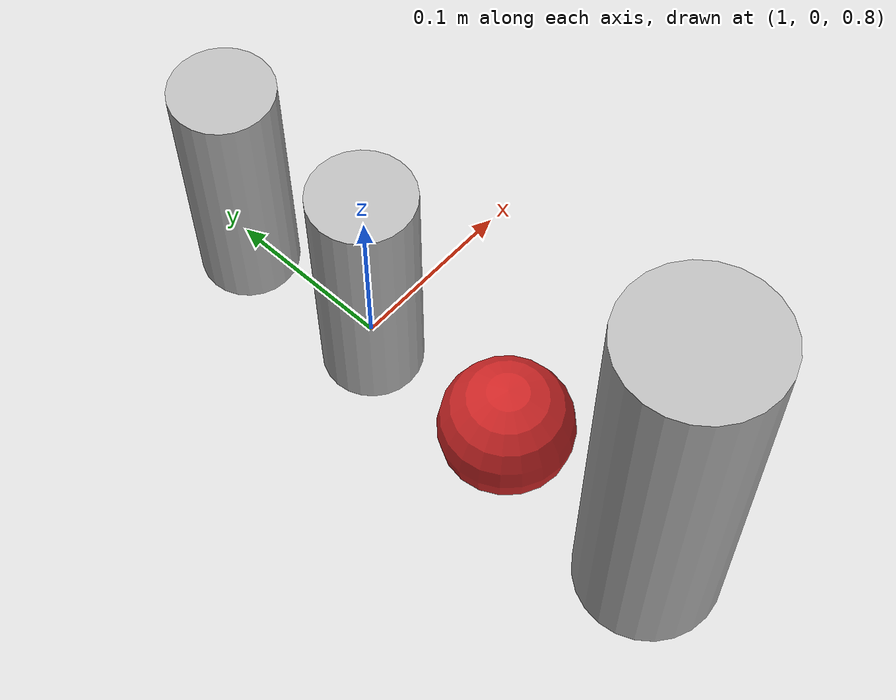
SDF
<sdf version="1.6">
 <world name="default">
  <light name="sun" type="directional">
   <pose>0 0 10 0 -0 0</pose>
   <diffuse>0.8 0.8 0.8 1</diffuse>
   <specular>0.2 0.2 0.2 1</specular>
   <attenuation>
    <range>1000</range>
    <constant>0.9</constant>
    <linear>0.01</linear>
    <quadratic>0.001</quadratic>
   </attenuation>
   <direction>-0.5 0.1 -0.9</direction>
  </light>
  <model name="ground_plane">
   <static>1</static>
   <link name="link">
    <collision name="collision">
     <geometry><plane><normal>0 0 1</normal><size>100 100</size></plane></geometry>
     <surface>
      <contact><collide_bitmask>65535</collide_bitmask></contact>
      <friction><ode><mu>100</mu><mu2>50</mu2></ode></friction>
     </surface>
    </collision>
    <visual name="visual">
     <cast_shadows>0</cast_shadows>
     <geometry><plane><normal>0 0 1</normal><size>100 100</size></plane></geometry>
     <material>
      <script><uri>file://media/materials/scripts/gazebo.material</uri><name>Gazebo/Grey</name></script>
     </material>
    </visual>
   </link>
  </model>
  <gravity>0 0 -9.8</gravity>
  <magnetic_field>6e-06 2.3e-05 -4.2e-05</magnetic_field>
  <atmosphere type="adiabatic"/>
  <physics name="default_physics" default="0" type="ode">
   <max_step_size>0.001</max_step_size>
   <real_time_factor>1</real_time_factor>
   <real_time_update_rate>1000</real_time_update_rate>
  </physics>
  <scene><ambient>0.4 0.4 0.4 1</ambient><background>0.7 0.7 0.7 1</background><shadows>1</shadows></scene>
  <spherical_coordinates>
   <surface_model>EARTH_WGS84</surface_model>
   <latitude_deg>0</latitude_deg>
   <longitude_deg>0</longitude_deg>
   <elevation>0</elevation>
   <heading_deg>0</heading_deg>
  </spherical_coordinates>
  <model name="coke_can_slim">
   <static>0</static>
   <link name="link">
    <inertial>
     <mass>0.15</mass>
     <inertia><ixx>2079.98</ixx><ixy>0</ixy><ixz>0</ixz><iyy>2079.98</iyy><iyz>0</iyz><izz>419.21</izz></inertia>
    </inertial>
    <collision name="collision">
     <geometry><cylinder><radius>0.029</radius><length>0.15</length></cylinder></geometry>
    </collision>
    <visual name="visual">
     <geometry><cylinder><radius>0.029</radius><length>0.15</length></cylinder></geometry>
     <material>
      <script>
       <uri>model://coke_can_slim/material/scripts</uri>
       <uri>model://coke_can_slim/material/textures</uri>
       <name>Custom/coke_can_slim</name>
      </script>
     </material>
    </visual>
    <velocity_decay><linear>0</linear><angular>0</angular></velocity_decay>
   </link>
   <pose>1 6e-06 0.850002 -9.3e-05 5.8e-05 0</pose>
  </model>
  <model name="biscuits_pack">
   <static>0</static>
   <link name="link">
    <inertial>
     <mass>0.25</mass>
     <inertia><ixx>0</ixx><ixy>0</ixy><ixz>0</ixz><iyy>0</iyy><iyz>0</iyz><izz>0</izz></inertia>
    </inertial>
    <collision name="collision">
     <geometry><cylinder><radius>0.029</radius><length>0.15</length></cylinder></geometry>
    </collision>
    <visual name="visual">
     <geometry><cylinder><radius>0.029</radius><length>0.15</length></cylinder></geometry>
     <material>
      <script>
       <uri>model://biscuits_pack/material/scripts</uri>
       <uri>model://biscuits_pack/material/textures</uri>
       <name>Custom/biscuits_pack</name>
      </script>
     </material>
    </visual>
    <velocity_decay><linear>0</linear><angular>0</angular></velocity_decay>
   </link>
   <pose>0.999984 0.100026 0.850014 -0.000493 -2.6e-05 -1e-06</pose>
  </model>
  <model name="pringles2">
   <static>0</static>
   <link name="link">
    <inertial>
     <mass>0.25</mass>
     <inertia><ixx>0</ixx><ixy>0</ixy><ixz>0</ixz><iyy>0</iyy><iyz>0</iyz><izz>0</izz></inertia>
    </inertial>
    <collision name="collision">
     <pose>0 0 0.12 -3.14159 -0 0</pose>
     <geometry><cylinder><radius>0.04</radius><length>0.235</length></cylinder></geometry>
    </collision>
    <visual name="visual">
     <pose>0 0 0.12 -3.14159 -0 0</pose>
     <geometry><cylinder><radius>0.04</radius><length>0.235</length></cylinder></geometry>
     <material>
      <script>
       <uri>model://pringles2/material/scripts</uri>
       <uri>model://pringles2/material/textures</uri>
       <name>Custom/pringles2</name>
      </script>
     </material>
    </visual>
    <velocity_decay><linear>0</linear><angular>0</angular></velocity_decay>
   </link>
   <pose>1 -0.2 0.772505 9.1e-05 -8.4e-05 -1e-06</pose>
  </model>
  <model name="cricket_ball">
   <link name="link">
    <pose>0 0 0.0375 0 -0 0</pose>
    <inertial>
     <mass>0.1467</mass>
     <inertia>
      <ixx>8.25187e-05</ixx>
      <ixy>0</ixy>
      <ixz>0</ixz>
      <iyy>8.25187e-05</iyy>
      <iyz>0</iyz>
      <izz>8.25187e-05</izz>
     </inertia>
    </inertial>
    <collision name="collision">
     <geometry><sphere><radius>0.0375</radius></sphere></geometry>
     <surface>
      <contact>
       <poissons_ratio>0.347</poissons_ratio>
       <elastic_modulus>8.8e+09</elastic_modulus>
       <ode><kp>100000</kp><kd>100</kd><max_vel>100</max_vel><min_depth>0.001</min_depth></ode>
      </contact>
      <friction>
       <torsional>
        <coefficient>1</coefficient>
        <use_patch_radius>0</use_patch_radius>
        <surface_radius>0.01</surface_radius>
       </torsional>
      </friction>
     </surface>
    </collision>
    <visual name="visual">
     <geometry><sphere><radius>0.0375</radius></sphere></geometry>
     <material>
      <script><uri>file://media/materials/scripts/gazebo.material</uri><name>Gazebo/Red</name></script>
     </material>
    </visual>
    <velocity_decay><linear>0</linear><angular>0.005</angular></velocity_decay>
   </link>
   <pose>1 -0.1 0.773986 0 -0 0</pose>
  </model>
 </world>
</sdf>
